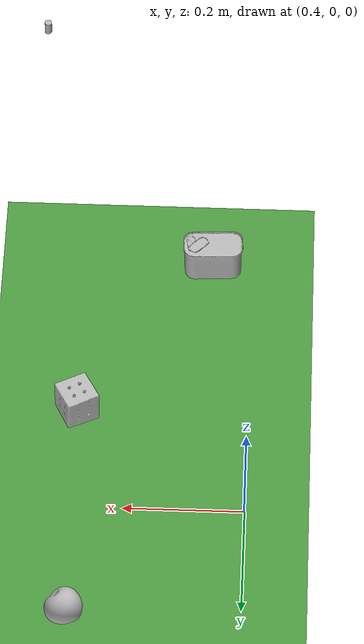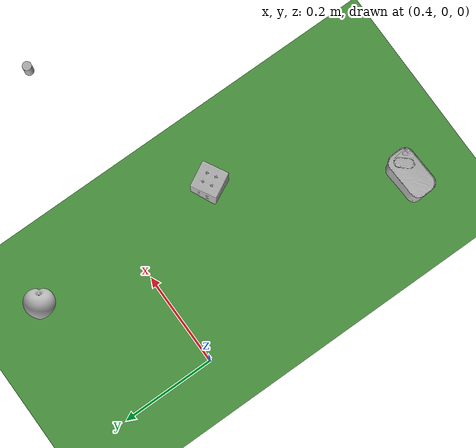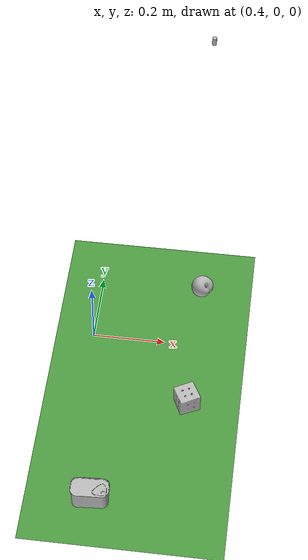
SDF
<sdf version="1.5">
 <world name="default">
  <physics type="ode">
   <ode>
    <solver><type>quick</type><iters>100</iters><sor>1.0</sor></solver>
    <constraints>
     <cfm>0.0</cfm>
     <erp>0.9</erp>
     <contact_max_correcting_vel>0.1</contact_max_correcting_vel>
     <contact_surface_layer>0.0</contact_surface_layer>
    </constraints>
   </ode>
   <real_time_update_rate>1000</real_time_update_rate>
   <max_step_size>0.0010</max_step_size>
  </physics>
  <scene>
   <sky><clouds><speed>12</speed></clouds></sky>
   <ambient>0.4 0.4 0.4 1</ambient>
   <background>0.25 0.25 0.25 1</background>
   <boundary><min>-5.0 -5.0 0</min><max>5.0 5.0 50</max></boundary>
  </scene>
  <model name="ground_plane">
   <static>true</static>
   <link name="link">
    <collision name="collision">
     <geometry><plane><normal>0 0 1</normal><size>10 10</size></plane></geometry>
     <surface><friction><ode><mu>1</mu><mu2>1</mu2></ode></friction></surface>
    </collision>
    <visual name="grass">
     <cast_shadows>false</cast_shadows>
     <geometry><plane><normal>0 0 1</normal><size>8 8</size></plane></geometry>
     <material>
      <script><uri>file://media/materials/scripts/gazebo.material</uri><name>Gazebo/Grass</name></script>
     </material>
    </visual>
   </link>
  </model>
  <include><uri>model://sun</uri></include>
  <model name="peach"><include><uri>model://peach</uri><pose>0.7 0.2 -0.02 0 0 0</pose></include></model>
  <model name="rubiks_cube">
   <include><uri>model://rubiks_cube</uri><pose>0.7 -0.2 0 0 0 0</pose></include>
  </model>
  <model name="potted_meat_can">
   <include><uri>model://potted_meat_can</uri><pose>0.5 -0.5 -0.02 0 0 0</pose></include>
  </model>
  <include><uri>model://camera1</uri><pose>0.7 0 1 0 0 -3.14</pose><static>1</static></include>
 </world>
</sdf>

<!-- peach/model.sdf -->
<sdf version="1.7">
    <!--
This SDF file was automatically generated using a template modified
and authored by Adwait Naik. The moment of interia is not supposed to be changed.
-->
    <model name="peach">
        <pose>0 0 0 0 0 0</pose>
        <link name="link">
            <inertial>
                <inertia>
                    <ixx>4.5876541133456013e-08</ixx>
                    <ixy>-6.824671211078382e-24</ixy>
                    <ixz>4.976057697768975e-24</ixz>
                    <iyy>4.4440446186663605e-08</iyy>
                    <iyz>-3.0375618849172078e-24</iyz>
                    <izz>4.0982746223781025e-08</izz>
                </inertia>
                <mass>0.00011721380481271601</mass>
            </inertial>
            <collision name="collision">
                <geometry>
                    <mesh>
                        <uri>textured.dae</uri>
                    </mesh>
                </geometry>
            </collision>
            <visual name="visual">
                <geometry>
                    <mesh>
                        <uri>textured.dae</uri>
                    </mesh>
                </geometry>
            </visual>
        </link>
    </model>
</sdf>

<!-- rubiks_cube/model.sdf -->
<sdf version="1.5">
<!--
This SDF file was automatically generated using a template modified
and authored by Adwait Naik. The moment of interia is not supposed to be changed.
-->
    <model name="rubiks_cube">
      <pose>0 0 0 0 0 0</pose>
      <link name="link">
        <inertial>
          <inertia>
           <ixx>9.85204038073643e-08</ixx>
           <ixy>-8.061824208102976e-24</ixy>
           <ixz>2.097640522420731e-24</ixz>
           <iyy>9.833577391876143e-08</iyy>
           <iyz>-2.1321925661475815e-23</iyz>
           <izz>9.818197457535545e-08</izz>
          </inertia>
          <mass>0.00018287731685751214</mass>
        </inertial>
        <collision name="collision">
          <geometry>
          	<mesh>
             <uri>textured.dae</uri>
            </mesh>
          </geometry>
        </collision>

        <visual name="visual">
          <geometry>
          	<mesh>
            <uri>textured.dae</uri>
	        </mesh>
          </geometry>
        </visual>
      </link>
    </model>
</sdf>

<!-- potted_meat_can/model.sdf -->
<!--
This SDF file was automatically generated using a template modified
and authored by Adwait Naik. The moment of interia is not supposed to be changed.
-->
<sdf version="1.7">
    <model name="potted_meat_can">
        <pose>0 0 0 0 0 0</pose>
        <link name="link">
            <inertial>
                <inertia>
                    <ixx>4.287366513749583e-07</ixx>
                    <ixy>-2.020309373055796e-23</ixy>
                    <ixz>-4.823406226388371e-24</ixz>
                    <iyy>3.228086963634995e-07</iyy>
                    <iyz>-5.302497140952807e-25</iyz>
                    <izz>2.4925393166117206e-07</izz>
                </inertia>
                <mass>0.0003541315255998319</mass>
            </inertial>
            <collision name="collision">
                <geometry>
                    <mesh>
                        <uri>textured.dae</uri>
                    </mesh>
                </geometry>
            </collision>
            <visual name="visual">
                <geometry>
                    <mesh>
                        <uri>textured.dae</uri>
                    </mesh>
                </geometry>
            </visual>
        </link>
    </model>
</sdf>

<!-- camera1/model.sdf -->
<sdf version="1.6" >
  <model name="camera1">
 <link name="cam_link">
      <pose>0 0 -0.02 0 0 0 </pose>
      <inertial>
        <mass>0.01</mass>
        <inertia>
          <ixx>0.001</ixx>
          <iyy>0.001</iyy>
          <izz>0.001</izz>
        </inertia>
      </inertial>
      <visual name='cam_link'>
    	<pose>0 0 0.15 0 3.1415 0</pose>
    	<geometry>
    		<cylinder>
    			<radius>.005</radius>
    			<length>.018</length>
    		</cylinder>
    	</geometry>
    </visual>
    <sensor name="cam" type="camera" >
      <pose>0 0 0.15 0 1.5707 0</pose>
      <camera>
        <horizontal_fov>1.2</horizontal_fov>

        <image>
          <width>640</width>
          <height>480</height>
        </image>
        <clip>
          <near>0.1</near>
          <far>1000</far>
        </clip>
      </camera>
      <always_on>1</always_on>
      <update_rate>30</update_rate>
      <visualize>true</visualize>
      <plugin name="camera_controller" filename="libgazebo_ros_camera.so">
        <always_on>true</always_on>
        <update_rate>30</update_rate>
        <cameraName>webcam</cameraName>
        <imageTopicName>image_raw</imageTopicName>
        <cameraInfoTopicName>camera_info</cameraInfoTopicName>
        <frameName>camera_link</frameName>
      </plugin>
    </sensor>
    </link>
    </model>
</sdf>
